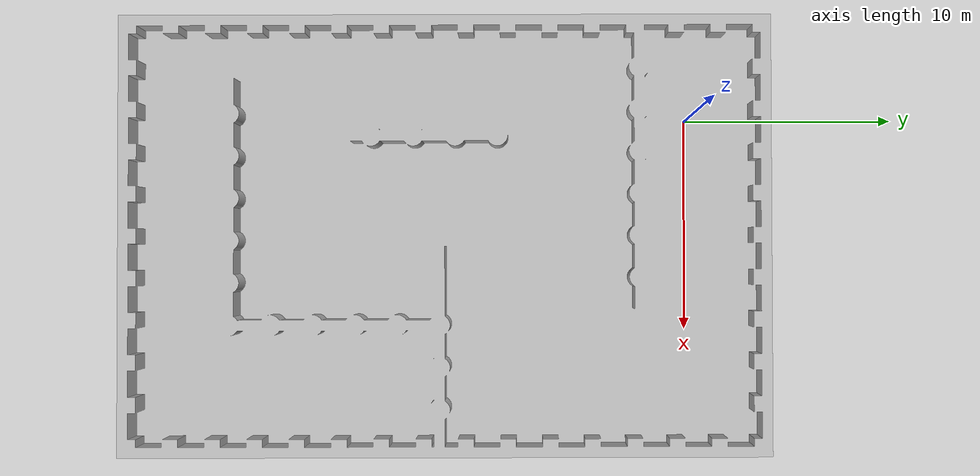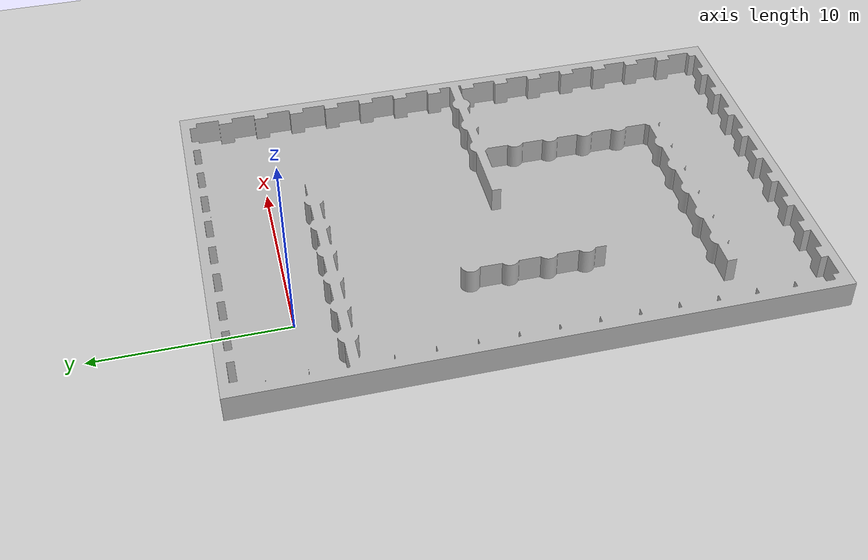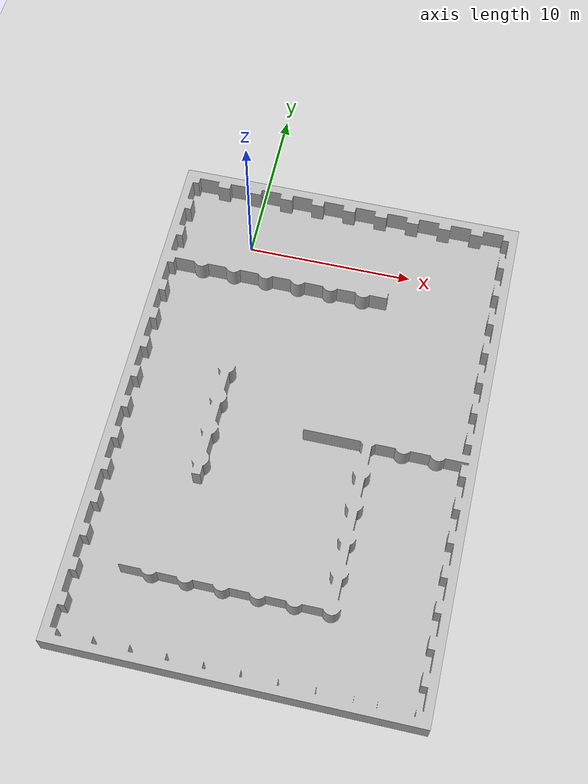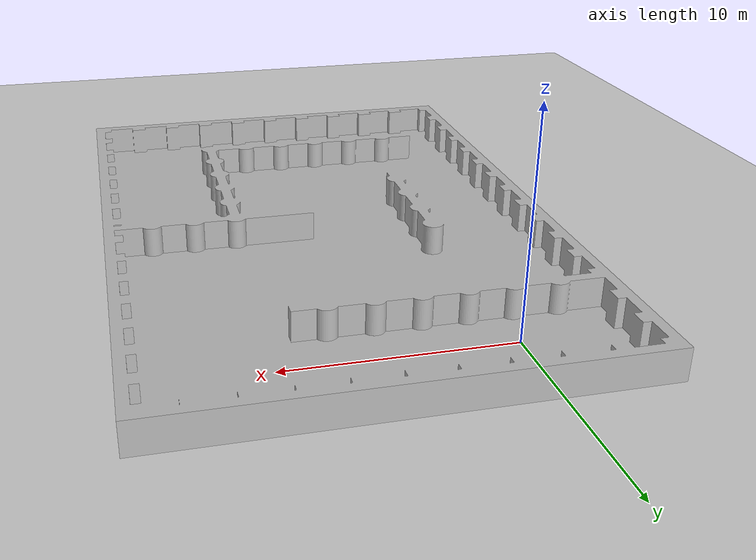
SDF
<?xml version="1.0"?>
<sdf version="1.4">
<world name="racecar_tunnel">

  <include>
    <uri>model://sun</uri>
  </include>

  <gui>
    <camera name='main'>
      <pose>0 0 10 0 1.571 0</pose>
    </camera>
  </gui>

  <model name="ground_plane">
    <static>true</static>
    <link name="link">
      <collision name="collision">
        <geometry>
          <plane>
            <normal>0 0 1</normal>
            <size>150 150</size>
          </plane>
        </geometry>
        <surface>
          <friction>
            <ode>
              <mu>100</mu>
              <mu2>50</mu2>
            </ode>
          </friction>
        </surface>
      </collision>
      <visual name="visual">
        <cast_shadows>false</cast_shadows>
        <geometry>
          <plane>
            <normal>0 0 1</normal>
            <size>150 150</size>
          </plane>
        </geometry>
        <material>
          <script>
            <uri>file://media/materials/scripts/gazebo.material</uri>
            <name>Gazebo/Grey</name>
          </script>
        </material>
      </visual>
    </link>
  </model>

  <include>
    <uri>model://racecar_description/models/maze1</uri>
    <pose>-5 4 -0.05 0 0 0</pose>
  </include>
  <light name='sun' type='directional'>
      <cast_shadows>1</cast_shadows>
      <pose frame=''>0 0 10 0 -0 0</pose>
      <diffuse>0.8 0.8 0.8 1</diffuse>
      <specular>0.1 0.1 0.1 1</specular>
      <attenuation>
        <range>1000</range>
        <constant>0.9</constant>
        <linear>0.01</linear>
        <quadratic>0.001</quadratic>
      </attenuation>
      <direction>-0.5 0.5 -1</direction>
    </light>

</world>
</sdf>

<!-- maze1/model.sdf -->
<sdf version='1.6'>
  <model name='maze'>
    <link name='link_0'>
      <pose frame=''>0 0 0 0 -0 0</pose>
      <inertial>
        <mass>1</mass>
        <inertia>
          <ixx>0.166667</ixx>
          <ixy>0</ixy>
          <ixz>0</ixz>
          <iyy>0.166667</iyy>
          <iyz>0</iyz>
          <izz>0.166667</izz>
        </inertia>
        <pose frame=''>0 0 0 0 -0 0</pose>
      </inertial>
      <gravity>1</gravity>
      <self_collide>0</self_collide>
      <kinematic>0</kinematic>
      <visual name='visual'>
        <pose frame=''>0 0 0 0 -0 0</pose>
        <geometry>
          <mesh>
            <uri>model://racecar_description/meshes/maze2.dae</uri>
            <scale>1 1 1</scale>
          </mesh>
        </geometry>
        <cast_shadows>1</cast_shadows>
        <transparency>0</transparency>
      </visual>
      <collision name='collision'>
        <laser_retro>0</laser_retro>
        <max_contacts>10</max_contacts>
        <pose frame=''>0 0 0 0 -0 0</pose>
        <geometry>
          <mesh>
            <uri>model://racecar_description/meshes/maze2.dae</uri>
          </mesh>
        </geometry>
        <surface>
          <friction>
            <ode>
              <mu>5</mu>
              <mu2>5</mu2>
              <fdir1>0 0 0</fdir1>
              <slip1>0</slip1>
              <slip2>0</slip2>
            </ode>
            <torsional>
              <coefficient>1</coefficient>
              <patch_radius>0</patch_radius>
              <surface_radius>0</surface_radius>
              <use_patch_radius>1</use_patch_radius>
              <ode>
                <slip>0</slip>
              </ode>
            </torsional>
          </friction>
          <bounce>
            <restitution_coefficient>0</restitution_coefficient>
            <threshold>1e+06</threshold>
          </bounce>
          <contact>
            <collide_without_contact>0</collide_without_contact>
            <collide_without_contact_bitmask>1</collide_without_contact_bitmask>
            <collide_bitmask>1</collide_bitmask>
            <ode>
              <soft_cfm>0</soft_cfm>
              <soft_erp>0.2</soft_erp>
              <kp>1e+13</kp>
              <kd>1</kd>
              <max_vel>0.01</max_vel>
              <min_depth>0</min_depth>
            </ode>
            <bullet>
              <split_impulse>1</split_impulse>
              <split_impulse_penetration_threshold>-0.01</split_impulse_penetration_threshold>
              <soft_cfm>0</soft_cfm>
              <soft_erp>0.2</soft_erp>
              <kp>1e+13</kp>
              <kd>1</kd>
            </bullet>
          </contact>
        </surface>
      </collision>
    </link>
    <static>1</static>
    <allow_auto_disable>1</allow_auto_disable>
  </model>
</sdf>
